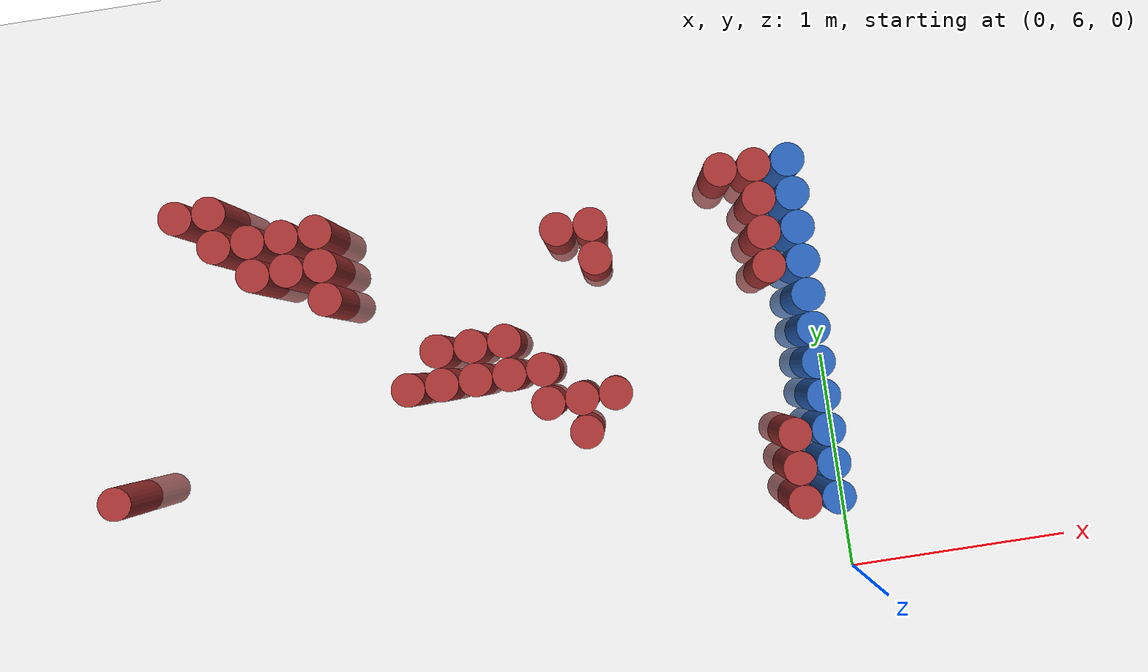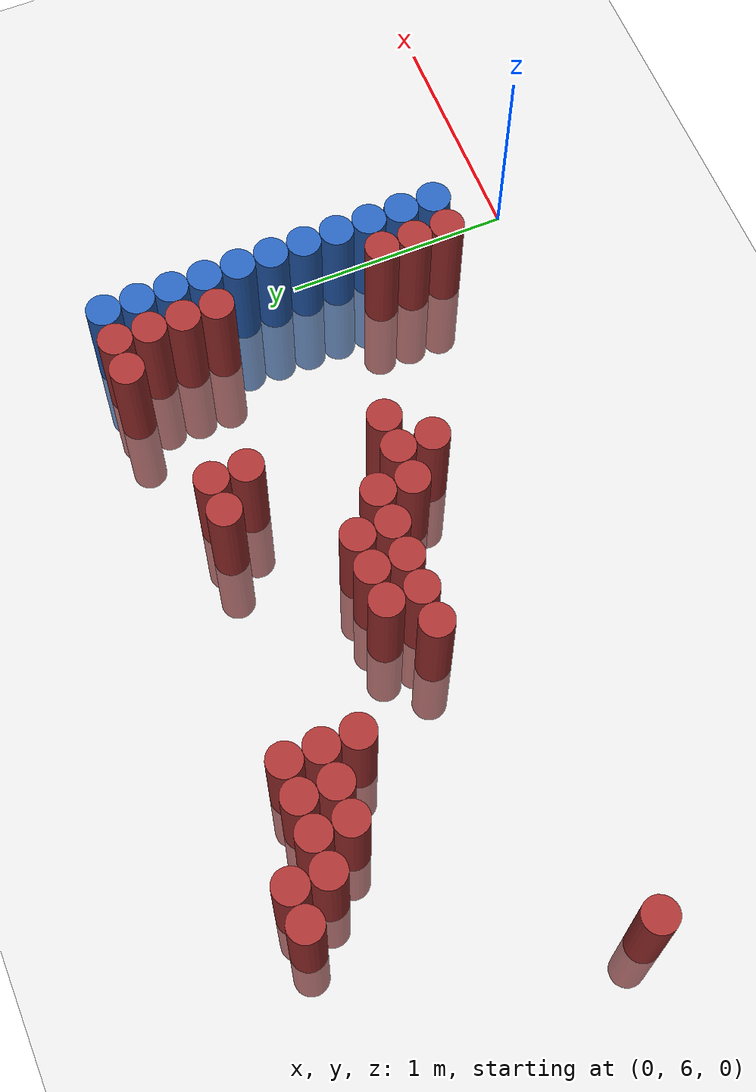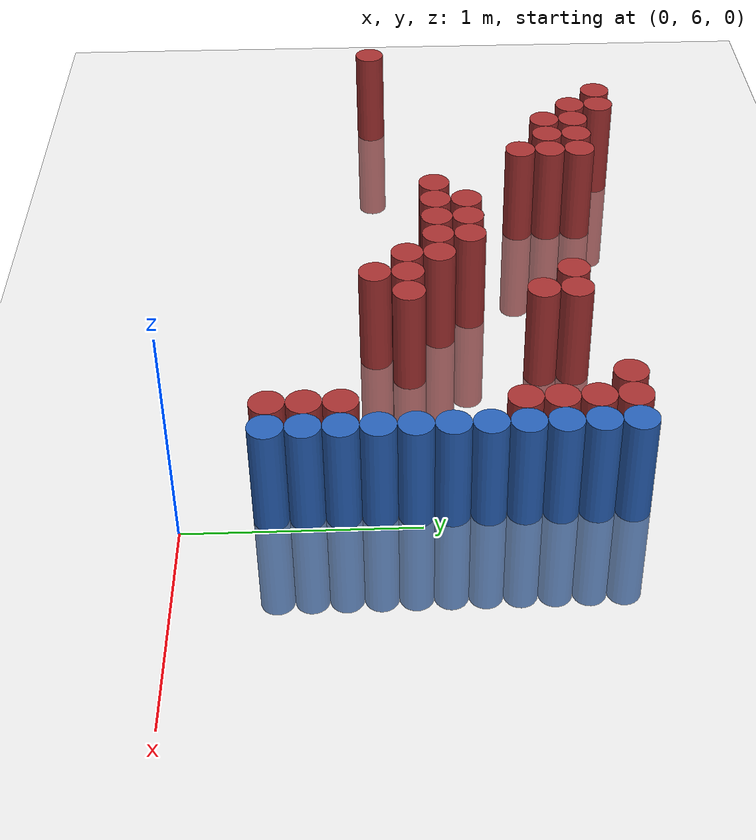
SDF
<sdf version="1.6">
 <world name="default">
  <model name="ground_plane">
   <static>1</static>
   <link name="link">
    <collision name="collision">
     <geometry><plane><normal>0 0 1</normal><size>100 100</size></plane></geometry>
     <surface><friction><ode><mu>100</mu><mu2>50</mu2></ode></friction></surface>
    </collision>
    <visual name="visual">
     <cast_shadows>0</cast_shadows>
     <geometry><plane><normal>0 0 1</normal><size>100 100</size></plane></geometry>
     <material>
      <script><uri>file://media/materials/scripts/gazebo.material</uri><name>Gazebo/Grey</name></script>
     </material>
    </visual>
   </link>
  </model>
  <model name="unit_cylinder_166">
   <static>1</static>
   <pose>-3.225000 6.825000 0.000000 0.000000 0.000000 0.000000</pose>
   <link name="link">
    <inertial>
     <mass>1</mass>
     <inertia><ixx>0.145833</ixx><ixy>0</ixy><ixz>0</ixz><iyy>0.145833</iyy><iyz>0</iyz><izz>0.125</izz></inertia>
    </inertial>
    <collision name="collision">
     <geometry><cylinder><radius>0.075000</radius><length>1</length></cylinder></geometry>
    </collision>
    <visual name="visual">
     <geometry><cylinder><radius>0.075000</radius><length>1</length></cylinder></geometry>
     <material>
      <ambient>0.648000 0.192000 0.192000 1</ambient>
      <diffuse>0.648000 0.192000 0.192000 1</diffuse>
     </material>
     <material>
      <script><name>Gazebo/Grey</name><uri>file://media/materials/scripts/gazebo.material</uri></script>
     </material>
    </visual>
   </link>
  </model>
  <model name="unit_cylinder_167">
   <static>1</static>
   <pose>-2.775000 8.025000 0.000000 0.000000 0.000000 0.000000</pose>
   <link name="link">
    <inertial>
     <mass>1</mass>
     <inertia><ixx>0.145833</ixx><ixy>0</ixy><ixz>0</ixz><iyy>0.145833</iyy><iyz>0</iyz><izz>0.125</izz></inertia>
    </inertial>
    <collision name="collision">
     <geometry><cylinder><radius>0.075000</radius><length>1</length></cylinder></geometry>
    </collision>
    <visual name="visual">
     <geometry><cylinder><radius>0.075000</radius><length>1</length></cylinder></geometry>
     <material>
      <ambient>0.648000 0.192000 0.192000 1</ambient>
      <diffuse>0.648000 0.192000 0.192000 1</diffuse>
     </material>
     <material>
      <script><name>Gazebo/Grey</name><uri>file://media/materials/scripts/gazebo.material</uri></script>
     </material>
    </visual>
   </link>
  </model>
  <model name="unit_cylinder_168">
   <static>1</static>
   <pose>-2.625000 7.875000 0.000000 0.000000 0.000000 0.000000</pose>
   <link name="link">
    <inertial>
     <mass>1</mass>
     <inertia><ixx>0.145833</ixx><ixy>0</ixy><ixz>0</ixz><iyy>0.145833</iyy><iyz>0</iyz><izz>0.125</izz></inertia>
    </inertial>
    <collision name="collision">
     <geometry><cylinder><radius>0.075000</radius><length>1</length></cylinder></geometry>
    </collision>
    <visual name="visual">
     <geometry><cylinder><radius>0.075000</radius><length>1</length></cylinder></geometry>
     <material>
      <ambient>0.648000 0.192000 0.192000 1</ambient>
      <diffuse>0.648000 0.192000 0.192000 1</diffuse>
     </material>
     <material>
      <script><name>Gazebo/Grey</name><uri>file://media/materials/scripts/gazebo.material</uri></script>
     </material>
    </visual>
   </link>
  </model>
  <model name="unit_cylinder_169">
   <static>1</static>
   <pose>-2.625000 8.025000 0.000000 0.000000 0.000000 0.000000</pose>
   <link name="link">
    <inertial>
     <mass>1</mass>
     <inertia><ixx>0.145833</ixx><ixy>0</ixy><ixz>0</ixz><iyy>0.145833</iyy><iyz>0</iyz><izz>0.125</izz></inertia>
    </inertial>
    <collision name="collision">
     <geometry><cylinder><radius>0.075000</radius><length>1</length></cylinder></geometry>
    </collision>
    <visual name="visual">
     <geometry><cylinder><radius>0.075000</radius><length>1</length></cylinder></geometry>
     <material>
      <ambient>0.648000 0.192000 0.192000 1</ambient>
      <diffuse>0.648000 0.192000 0.192000 1</diffuse>
     </material>
     <material>
      <script><name>Gazebo/Grey</name><uri>file://media/materials/scripts/gazebo.material</uri></script>
     </material>
    </visual>
   </link>
  </model>
  <model name="unit_cylinder_171">
   <static>1</static>
   <pose>-2.475000 7.725000 0.000000 0.000000 0.000000 0.000000</pose>
   <link name="link">
    <inertial>
     <mass>1</mass>
     <inertia><ixx>0.145833</ixx><ixy>0</ixy><ixz>0</ixz><iyy>0.145833</iyy><iyz>0</iyz><izz>0.125</izz></inertia>
    </inertial>
    <collision name="collision">
     <geometry><cylinder><radius>0.075000</radius><length>1</length></cylinder></geometry>
    </collision>
    <visual name="visual">
     <geometry><cylinder><radius>0.075000</radius><length>1</length></cylinder></geometry>
     <material>
      <ambient>0.648000 0.192000 0.192000 1</ambient>
      <diffuse>0.648000 0.192000 0.192000 1</diffuse>
     </material>
     <material>
      <script><name>Gazebo/Grey</name><uri>file://media/materials/scripts/gazebo.material</uri></script>
     </material>
    </visual>
   </link>
  </model>
  <model name="unit_cylinder_172">
   <static>1</static>
   <pose>-2.475000 7.875000 0.000000 0.000000 0.000000 0.000000</pose>
   <link name="link">
    <inertial>
     <mass>1</mass>
     <inertia><ixx>0.145833</ixx><ixy>0</ixy><ixz>0</ixz><iyy>0.145833</iyy><iyz>0</iyz><izz>0.125</izz></inertia>
    </inertial>
    <collision name="collision">
     <geometry><cylinder><radius>0.075000</radius><length>1</length></cylinder></geometry>
    </collision>
    <visual name="visual">
     <geometry><cylinder><radius>0.075000</radius><length>1</length></cylinder></geometry>
     <material>
      <ambient>0.648000 0.192000 0.192000 1</ambient>
      <diffuse>0.648000 0.192000 0.192000 1</diffuse>
     </material>
     <material>
      <script><name>Gazebo/Grey</name><uri>file://media/materials/scripts/gazebo.material</uri></script>
     </material>
    </visual>
   </link>
  </model>
  <model name="unit_cylinder_176">
   <static>1</static>
   <pose>-2.325000 7.725000 0.000000 0.000000 0.000000 0.000000</pose>
   <link name="link">
    <inertial>
     <mass>1</mass>
     <inertia><ixx>0.145833</ixx><ixy>0</ixy><ixz>0</ixz><iyy>0.145833</iyy><iyz>0</iyz><izz>0.125</izz></inertia>
    </inertial>
    <collision name="collision">
     <geometry><cylinder><radius>0.075000</radius><length>1</length></cylinder></geometry>
    </collision>
    <visual name="visual">
     <geometry><cylinder><radius>0.075000</radius><length>1</length></cylinder></geometry>
     <material>
      <ambient>0.648000 0.192000 0.192000 1</ambient>
      <diffuse>0.648000 0.192000 0.192000 1</diffuse>
     </material>
     <material>
      <script><name>Gazebo/Grey</name><uri>file://media/materials/scripts/gazebo.material</uri></script>
     </material>
    </visual>
   </link>
  </model>
  <model name="unit_cylinder_177">
   <static>1</static>
   <pose>-2.325000 7.875000 0.000000 0.000000 0.000000 0.000000</pose>
   <link name="link">
    <inertial>
     <mass>1</mass>
     <inertia><ixx>0.145833</ixx><ixy>0</ixy><ixz>0</ixz><iyy>0.145833</iyy><iyz>0</iyz><izz>0.125</izz></inertia>
    </inertial>
    <collision name="collision">
     <geometry><cylinder><radius>0.075000</radius><length>1</length></cylinder></geometry>
    </collision>
    <visual name="visual">
     <geometry><cylinder><radius>0.075000</radius><length>1</length></cylinder></geometry>
     <material>
      <ambient>0.648000 0.192000 0.192000 1</ambient>
      <diffuse>0.648000 0.192000 0.192000 1</diffuse>
     </material>
     <material>
      <script><name>Gazebo/Grey</name><uri>file://media/materials/scripts/gazebo.material</uri></script>
     </material>
    </visual>
   </link>
  </model>
  <model name="unit_cylinder_181">
   <static>1</static>
   <pose>-2.175000 7.575000 0.000000 0.000000 0.000000 0.000000</pose>
   <link name="link">
    <inertial>
     <mass>1</mass>
     <inertia><ixx>0.145833</ixx><ixy>0</ixy><ixz>0</ixz><iyy>0.145833</iyy><iyz>0</iyz><izz>0.125</izz></inertia>
    </inertial>
    <collision name="collision">
     <geometry><cylinder><radius>0.075000</radius><length>1</length></cylinder></geometry>
    </collision>
    <visual name="visual">
     <geometry><cylinder><radius>0.075000</radius><length>1</length></cylinder></geometry>
     <material>
      <ambient>0.648000 0.192000 0.192000 1</ambient>
      <diffuse>0.648000 0.192000 0.192000 1</diffuse>
     </material>
     <material>
      <script><name>Gazebo/Grey</name><uri>file://media/materials/scripts/gazebo.material</uri></script>
     </material>
    </visual>
   </link>
  </model>
  <model name="unit_cylinder_182">
   <static>1</static>
   <pose>-2.175000 7.725000 0.000000 0.000000 0.000000 0.000000</pose>
   <link name="link">
    <inertial>
     <mass>1</mass>
     <inertia><ixx>0.145833</ixx><ixy>0</ixy><ixz>0</ixz><iyy>0.145833</iyy><iyz>0</iyz><izz>0.125</izz></inertia>
    </inertial>
    <collision name="collision">
     <geometry><cylinder><radius>0.075000</radius><length>1</length></cylinder></geometry>
    </collision>
    <visual name="visual">
     <geometry><cylinder><radius>0.075000</radius><length>1</length></cylinder></geometry>
     <material>
      <ambient>0.648000 0.192000 0.192000 1</ambient>
      <diffuse>0.648000 0.192000 0.192000 1</diffuse>
     </material>
     <material>
      <script><name>Gazebo/Grey</name><uri>file://media/materials/scripts/gazebo.material</uri></script>
     </material>
    </visual>
   </link>
  </model>
  <model name="unit_cylinder_183">
   <static>1</static>
   <pose>-2.175000 7.875000 0.000000 0.000000 0.000000 0.000000</pose>
   <link name="link">
    <inertial>
     <mass>1</mass>
     <inertia><ixx>0.145833</ixx><ixy>0</ixy><ixz>0</ixz><iyy>0.145833</iyy><iyz>0</iyz><izz>0.125</izz></inertia>
    </inertial>
    <collision name="collision">
     <geometry><cylinder><radius>0.075000</radius><length>1</length></cylinder></geometry>
    </collision>
    <visual name="visual">
     <geometry><cylinder><radius>0.075000</radius><length>1</length></cylinder></geometry>
     <material>
      <ambient>0.648000 0.192000 0.192000 1</ambient>
      <diffuse>0.648000 0.192000 0.192000 1</diffuse>
     </material>
     <material>
      <script><name>Gazebo/Grey</name><uri>file://media/materials/scripts/gazebo.material</uri></script>
     </material>
    </visual>
   </link>
  </model>
  <model name="unit_cylinder_189">
   <static>1</static>
   <pose>-1.875000 7.125000 0.000000 0.000000 0.000000 0.000000</pose>
   <link name="link">
    <inertial>
     <mass>1</mass>
     <inertia><ixx>0.145833</ixx><ixy>0</ixy><ixz>0</ixz><iyy>0.145833</iyy><iyz>0</iyz><izz>0.125</izz></inertia>
    </inertial>
    <collision name="collision">
     <geometry><cylinder><radius>0.075000</radius><length>1</length></cylinder></geometry>
    </collision>
    <visual name="visual">
     <geometry><cylinder><radius>0.075000</radius><length>1</length></cylinder></geometry>
     <material>
      <ambient>0.648000 0.192000 0.192000 1</ambient>
      <diffuse>0.648000 0.192000 0.192000 1</diffuse>
     </material>
     <material>
      <script><name>Gazebo/Grey</name><uri>file://media/materials/scripts/gazebo.material</uri></script>
     </material>
    </visual>
   </link>
  </model>
  <model name="unit_cylinder_190">
   <static>1</static>
   <pose>-1.725000 7.125000 0.000000 0.000000 0.000000 0.000000</pose>
   <link name="link">
    <inertial>
     <mass>1</mass>
     <inertia><ixx>0.145833</ixx><ixy>0</ixy><ixz>0</ixz><iyy>0.145833</iyy><iyz>0</iyz><izz>0.125</izz></inertia>
    </inertial>
    <collision name="collision">
     <geometry><cylinder><radius>0.075000</radius><length>1</length></cylinder></geometry>
    </collision>
    <visual name="visual">
     <geometry><cylinder><radius>0.075000</radius><length>1</length></cylinder></geometry>
     <material>
      <ambient>0.648000 0.192000 0.192000 1</ambient>
      <diffuse>0.648000 0.192000 0.192000 1</diffuse>
     </material>
     <material>
      <script><name>Gazebo/Grey</name><uri>file://media/materials/scripts/gazebo.material</uri></script>
     </material>
    </visual>
   </link>
  </model>
  <model name="unit_cylinder_191">
   <static>1</static>
   <pose>-1.725000 7.275000 0.000000 0.000000 0.000000 0.000000</pose>
   <link name="link">
    <inertial>
     <mass>1</mass>
     <inertia><ixx>0.145833</ixx><ixy>0</ixy><ixz>0</ixz><iyy>0.145833</iyy><iyz>0</iyz><izz>0.125</izz></inertia>
    </inertial>
    <collision name="collision">
     <geometry><cylinder><radius>0.075000</radius><length>1</length></cylinder></geometry>
    </collision>
    <visual name="visual">
     <geometry><cylinder><radius>0.075000</radius><length>1</length></cylinder></geometry>
     <material>
      <ambient>0.648000 0.192000 0.192000 1</ambient>
      <diffuse>0.648000 0.192000 0.192000 1</diffuse>
     </material>
     <material>
      <script><name>Gazebo/Grey</name><uri>file://media/materials/scripts/gazebo.material</uri></script>
     </material>
    </visual>
   </link>
  </model>
  <model name="unit_cylinder_192">
   <static>1</static>
   <pose>-1.575000 7.125000 0.000000 0.000000 0.000000 0.000000</pose>
   <link name="link">
    <inertial>
     <mass>1</mass>
     <inertia><ixx>0.145833</ixx><ixy>0</ixy><ixz>0</ixz><iyy>0.145833</iyy><iyz>0</iyz><izz>0.125</izz></inertia>
    </inertial>
    <collision name="collision">
     <geometry><cylinder><radius>0.075000</radius><length>1</length></cylinder></geometry>
    </collision>
    <visual name="visual">
     <geometry><cylinder><radius>0.075000</radius><length>1</length></cylinder></geometry>
     <material>
      <ambient>0.648000 0.192000 0.192000 1</ambient>
      <diffuse>0.648000 0.192000 0.192000 1</diffuse>
     </material>
     <material>
      <script><name>Gazebo/Grey</name><uri>file://media/materials/scripts/gazebo.material</uri></script>
     </material>
    </visual>
   </link>
  </model>
  <model name="unit_cylinder_193">
   <static>1</static>
   <pose>-1.575000 7.275000 0.000000 0.000000 0.000000 0.000000</pose>
   <link name="link">
    <inertial>
     <mass>1</mass>
     <inertia><ixx>0.145833</ixx><ixy>0</ixy><ixz>0</ixz><iyy>0.145833</iyy><iyz>0</iyz><izz>0.125</izz></inertia>
    </inertial>
    <collision name="collision">
     <geometry><cylinder><radius>0.075000</radius><length>1</length></cylinder></geometry>
    </collision>
    <visual name="visual">
     <geometry><cylinder><radius>0.075000</radius><length>1</length></cylinder></geometry>
     <material>
      <ambient>0.648000 0.192000 0.192000 1</ambient>
      <diffuse>0.648000 0.192000 0.192000 1</diffuse>
     </material>
     <material>
      <script><name>Gazebo/Grey</name><uri>file://media/materials/scripts/gazebo.material</uri></script>
     </material>
    </visual>
   </link>
  </model>
  <model name="unit_cylinder_194">
   <static>1</static>
   <pose>-1.425000 7.125000 0.000000 0.000000 0.000000 0.000000</pose>
   <link name="link">
    <inertial>
     <mass>1</mass>
     <inertia><ixx>0.145833</ixx><ixy>0</ixy><ixz>0</ixz><iyy>0.145833</iyy><iyz>0</iyz><izz>0.125</izz></inertia>
    </inertial>
    <collision name="collision">
     <geometry><cylinder><radius>0.075000</radius><length>1</length></cylinder></geometry>
    </collision>
    <visual name="visual">
     <geometry><cylinder><radius>0.075000</radius><length>1</length></cylinder></geometry>
     <material>
      <ambient>0.648000 0.192000 0.192000 1</ambient>
      <diffuse>0.648000 0.192000 0.192000 1</diffuse>
     </material>
     <material>
      <script><name>Gazebo/Grey</name><uri>file://media/materials/scripts/gazebo.material</uri></script>
     </material>
    </visual>
   </link>
  </model>
  <model name="unit_cylinder_195">
   <static>1</static>
   <pose>-1.425000 7.275000 0.000000 0.000000 0.000000 0.000000</pose>
   <link name="link">
    <inertial>
     <mass>1</mass>
     <inertia><ixx>0.145833</ixx><ixy>0</ixy><ixz>0</ixz><iyy>0.145833</iyy><iyz>0</iyz><izz>0.125</izz></inertia>
    </inertial>
    <collision name="collision">
     <geometry><cylinder><radius>0.075000</radius><length>1</length></cylinder></geometry>
    </collision>
    <visual name="visual">
     <geometry><cylinder><radius>0.075000</radius><length>1</length></cylinder></geometry>
     <material>
      <ambient>0.648000 0.192000 0.192000 1</ambient>
      <diffuse>0.648000 0.192000 0.192000 1</diffuse>
     </material>
     <material>
      <script><name>Gazebo/Grey</name><uri>file://media/materials/scripts/gazebo.material</uri></script>
     </material>
    </visual>
   </link>
  </model>
  <model name="unit_cylinder_196">
   <static>1</static>
   <pose>-1.275000 6.975000 0.000000 0.000000 0.000000 0.000000</pose>
   <link name="link">
    <inertial>
     <mass>1</mass>
     <inertia><ixx>0.145833</ixx><ixy>0</ixy><ixz>0</ixz><iyy>0.145833</iyy><iyz>0</iyz><izz>0.125</izz></inertia>
    </inertial>
    <collision name="collision">
     <geometry><cylinder><radius>0.075000</radius><length>1</length></cylinder></geometry>
    </collision>
    <visual name="visual">
     <geometry><cylinder><radius>0.075000</radius><length>1</length></cylinder></geometry>
     <material>
      <ambient>0.648000 0.192000 0.192000 1</ambient>
      <diffuse>0.648000 0.192000 0.192000 1</diffuse>
     </material>
     <material>
      <script><name>Gazebo/Grey</name><uri>file://media/materials/scripts/gazebo.material</uri></script>
     </material>
    </visual>
   </link>
  </model>
  <model name="unit_cylinder_197">
   <static>1</static>
   <pose>-1.275000 7.125000 0.000000 0.000000 0.000000 0.000000</pose>
   <link name="link">
    <inertial>
     <mass>1</mass>
     <inertia><ixx>0.145833</ixx><ixy>0</ixy><ixz>0</ixz><iyy>0.145833</iyy><iyz>0</iyz><izz>0.125</izz></inertia>
    </inertial>
    <collision name="collision">
     <geometry><cylinder><radius>0.075000</radius><length>1</length></cylinder></geometry>
    </collision>
    <visual name="visual">
     <geometry><cylinder><radius>0.075000</radius><length>1</length></cylinder></geometry>
     <material>
      <ambient>0.648000 0.192000 0.192000 1</ambient>
      <diffuse>0.648000 0.192000 0.192000 1</diffuse>
     </material>
     <material>
      <script><name>Gazebo/Grey</name><uri>file://media/materials/scripts/gazebo.material</uri></script>
     </material>
    </visual>
   </link>
  </model>
  <model name="unit_cylinder_200">
   <static>1</static>
   <pose>-1.125000 6.825000 0.000000 0.000000 0.000000 0.000000</pose>
   <link name="link">
    <inertial>
     <mass>1</mass>
     <inertia><ixx>0.145833</ixx><ixy>0</ixy><ixz>0</ixz><iyy>0.145833</iyy><iyz>0</iyz><izz>0.125</izz></inertia>
    </inertial>
    <collision name="collision">
     <geometry><cylinder><radius>0.075000</radius><length>1</length></cylinder></geometry>
    </collision>
    <visual name="visual">
     <geometry><cylinder><radius>0.075000</radius><length>1</length></cylinder></geometry>
     <material>
      <ambient>0.648000 0.192000 0.192000 1</ambient>
      <diffuse>0.648000 0.192000 0.192000 1</diffuse>
     </material>
     <material>
      <script><name>Gazebo/Grey</name><uri>file://media/materials/scripts/gazebo.material</uri></script>
     </material>
    </visual>
   </link>
  </model>
  <model name="unit_cylinder_201">
   <static>1</static>
   <pose>-1.125000 6.975000 0.000000 0.000000 0.000000 0.000000</pose>
   <link name="link">
    <inertial>
     <mass>1</mass>
     <inertia><ixx>0.145833</ixx><ixy>0</ixy><ixz>0</ixz><iyy>0.145833</iyy><iyz>0</iyz><izz>0.125</izz></inertia>
    </inertial>
    <collision name="collision">
     <geometry><cylinder><radius>0.075000</radius><length>1</length></cylinder></geometry>
    </collision>
    <visual name="visual">
     <geometry><cylinder><radius>0.075000</radius><length>1</length></cylinder></geometry>
     <material>
      <ambient>0.648000 0.192000 0.192000 1</ambient>
      <diffuse>0.648000 0.192000 0.192000 1</diffuse>
     </material>
     <material>
      <script><name>Gazebo/Grey</name><uri>file://media/materials/scripts/gazebo.material</uri></script>
     </material>
    </visual>
   </link>
  </model>
  <model name="unit_cylinder_202">
   <static>1</static>
   <pose>-1.125000 7.725000 0.000000 0.000000 0.000000 0.000000</pose>
   <link name="link">
    <inertial>
     <mass>1</mass>
     <inertia><ixx>0.145833</ixx><ixy>0</ixy><ixz>0</ixz><iyy>0.145833</iyy><iyz>0</iyz><izz>0.125</izz></inertia>
    </inertial>
    <collision name="collision">
     <geometry><cylinder><radius>0.075000</radius><length>1</length></cylinder></geometry>
    </collision>
    <visual name="visual">
     <geometry><cylinder><radius>0.075000</radius><length>1</length></cylinder></geometry>
     <material>
      <ambient>0.648000 0.192000 0.192000 1</ambient>
      <diffuse>0.648000 0.192000 0.192000 1</diffuse>
     </material>
     <material>
      <script><name>Gazebo/Grey</name><uri>file://media/materials/scripts/gazebo.material</uri></script>
     </material>
    </visual>
   </link>
  </model>
  <model name="unit_cylinder_205">
   <static>1</static>
   <pose>-0.975000 6.975000 0.000000 0.000000 0.000000 0.000000</pose>
   <link name="link">
    <inertial>
     <mass>1</mass>
     <inertia><ixx>0.145833</ixx><ixy>0</ixy><ixz>0</ixz><iyy>0.145833</iyy><iyz>0</iyz><izz>0.125</izz></inertia>
    </inertial>
    <collision name="collision">
     <geometry><cylinder><radius>0.075000</radius><length>1</length></cylinder></geometry>
    </collision>
    <visual name="visual">
     <geometry><cylinder><radius>0.075000</radius><length>1</length></cylinder></geometry>
     <material>
      <ambient>0.648000 0.192000 0.192000 1</ambient>
      <diffuse>0.648000 0.192000 0.192000 1</diffuse>
     </material>
     <material>
      <script><name>Gazebo/Grey</name><uri>file://media/materials/scripts/gazebo.material</uri></script>
     </material>
    </visual>
   </link>
  </model>
  <model name="unit_cylinder_206">
   <static>1</static>
   <pose>-0.975000 7.575000 0.000000 0.000000 0.000000 0.000000</pose>
   <link name="link">
    <inertial>
     <mass>1</mass>
     <inertia><ixx>0.145833</ixx><ixy>0</ixy><ixz>0</ixz><iyy>0.145833</iyy><iyz>0</iyz><izz>0.125</izz></inertia>
    </inertial>
    <collision name="collision">
     <geometry><cylinder><radius>0.075000</radius><length>1</length></cylinder></geometry>
    </collision>
    <visual name="visual">
     <geometry><cylinder><radius>0.075000</radius><length>1</length></cylinder></geometry>
     <material>
      <ambient>0.648000 0.192000 0.192000 1</ambient>
      <diffuse>0.648000 0.192000 0.192000 1</diffuse>
     </material>
     <material>
      <script><name>Gazebo/Grey</name><uri>file://media/materials/scripts/gazebo.material</uri></script>
     </material>
    </visual>
   </link>
  </model>
  <model name="unit_cylinder_207">
   <static>1</static>
   <pose>-0.975000 7.725000 0.000000 0.000000 0.000000 0.000000</pose>
   <link name="link">
    <inertial>
     <mass>1</mass>
     <inertia><ixx>0.145833</ixx><ixy>0</ixy><ixz>0</ixz><iyy>0.145833</iyy><iyz>0</iyz><izz>0.125</izz></inertia>
    </inertial>
    <collision name="collision">
     <geometry><cylinder><radius>0.075000</radius><length>1</length></cylinder></geometry>
    </collision>
    <visual name="visual">
     <geometry><cylinder><radius>0.075000</radius><length>1</length></cylinder></geometry>
     <material>
      <ambient>0.648000 0.192000 0.192000 1</ambient>
      <diffuse>0.648000 0.192000 0.192000 1</diffuse>
     </material>
     <material>
      <script><name>Gazebo/Grey</name><uri>file://media/materials/scripts/gazebo.material</uri></script>
     </material>
    </visual>
   </link>
  </model>
  <model name="unit_cylinder_223">
   <static>1</static>
   <pose>-0.375000 7.875000 0.000000 0.000000 0.000000 0.000000</pose>
   <link name="link">
    <inertial>
     <mass>1</mass>
     <inertia><ixx>0.145833</ixx><ixy>0</ixy><ixz>0</ixz><iyy>0.145833</iyy><iyz>0</iyz><izz>0.125</izz></inertia>
    </inertial>
    <collision name="collision">
     <geometry><cylinder><radius>0.075000</radius><length>1</length></cylinder></geometry>
    </collision>
    <visual name="visual">
     <geometry><cylinder><radius>0.075000</radius><length>1</length></cylinder></geometry>
     <material>
      <ambient>0.648000 0.192000 0.192000 1</ambient>
      <diffuse>0.648000 0.192000 0.192000 1</diffuse>
     </material>
     <material>
      <script><name>Gazebo/Grey</name><uri>file://media/materials/scripts/gazebo.material</uri></script>
     </material>
    </visual>
   </link>
  </model>
  <model name="unit_cylinder_231">
   <static>1</static>
   <pose>-0.225000 6.375000 0.000000 0.000000 0.000000 0.000000</pose>
   <link name="link">
    <inertial>
     <mass>1</mass>
     <inertia><ixx>0.145833</ixx><ixy>0</ixy><ixz>0</ixz><iyy>0.145833</iyy><iyz>0</iyz><izz>0.125</izz></inertia>
    </inertial>
    <collision name="collision">
     <geometry><cylinder><radius>0.075000</radius><length>1</length></cylinder></geometry>
    </collision>
    <visual name="visual">
     <geometry><cylinder><radius>0.075000</radius><length>1</length></cylinder></geometry>
     <material>
      <ambient>0.648000 0.192000 0.192000 1</ambient>
      <diffuse>0.648000 0.192000 0.192000 1</diffuse>
     </material>
     <material>
      <script><name>Gazebo/Grey</name><uri>file://media/materials/scripts/gazebo.material</uri></script>
     </material>
    </visual>
   </link>
  </model>
  <model name="unit_cylinder_232">
   <static>1</static>
   <pose>-0.225000 6.525000 0.000000 0.000000 0.000000 0.000000</pose>
   <link name="link">
    <inertial>
     <mass>1</mass>
     <inertia><ixx>0.145833</ixx><ixy>0</ixy><ixz>0</ixz><iyy>0.145833</iyy><iyz>0</iyz><izz>0.125</izz></inertia>
    </inertial>
    <collision name="collision">
     <geometry><cylinder><radius>0.075000</radius><length>1</length></cylinder></geometry>
    </collision>
    <visual name="visual">
     <geometry><cylinder><radius>0.075000</radius><length>1</length></cylinder></geometry>
     <material>
      <ambient>0.648000 0.192000 0.192000 1</ambient>
      <diffuse>0.648000 0.192000 0.192000 1</diffuse>
     </material>
     <material>
      <script><name>Gazebo/Grey</name><uri>file://media/materials/scripts/gazebo.material</uri></script>
     </material>
    </visual>
   </link>
  </model>
  <model name="unit_cylinder_233">
   <static>1</static>
   <pose>-0.225000 6.675000 0.000000 0.000000 0.000000 0.000000</pose>
   <link name="link">
    <inertial>
     <mass>1</mass>
     <inertia><ixx>0.145833</ixx><ixy>0</ixy><ixz>0</ixz><iyy>0.145833</iyy><iyz>0</iyz><izz>0.125</izz></inertia>
    </inertial>
    <collision name="collision">
     <geometry><cylinder><radius>0.075000</radius><length>1</length></cylinder></geometry>
    </collision>
    <visual name="visual">
     <geometry><cylinder><radius>0.075000</radius><length>1</length></cylinder></geometry>
     <material>
      <ambient>0.648000 0.192000 0.192000 1</ambient>
      <diffuse>0.648000 0.192000 0.192000 1</diffuse>
     </material>
     <material>
      <script><name>Gazebo/Grey</name><uri>file://media/materials/scripts/gazebo.material</uri></script>
     </material>
    </visual>
   </link>
  </model>
  <model name="unit_cylinder_234">
   <static>1</static>
   <pose>-0.225000 7.425000 0.000000 0.000000 0.000000 0.000000</pose>
   <link name="link">
    <inertial>
     <mass>1</mass>
     <inertia><ixx>0.145833</ixx><ixy>0</ixy><ixz>0</ixz><iyy>0.145833</iyy><iyz>0</iyz><izz>0.125</izz></inertia>
    </inertial>
    <collision name="collision">
     <geometry><cylinder><radius>0.075000</radius><length>1</length></cylinder></geometry>
    </collision>
    <visual name="visual">
     <geometry><cylinder><radius>0.075000</radius><length>1</length></cylinder></geometry>
     <material>
      <ambient>0.648000 0.192000 0.192000 1</ambient>
      <diffuse>0.648000 0.192000 0.192000 1</diffuse>
     </material>
     <material>
      <script><name>Gazebo/Grey</name><uri>file://media/materials/scripts/gazebo.material</uri></script>
     </material>
    </visual>
   </link>
  </model>
  <model name="unit_cylinder_235">
   <static>1</static>
   <pose>-0.225000 7.575000 0.000000 0.000000 0.000000 0.000000</pose>
   <link name="link">
    <inertial>
     <mass>1</mass>
     <inertia><ixx>0.145833</ixx><ixy>0</ixy><ixz>0</ixz><iyy>0.145833</iyy><iyz>0</iyz><izz>0.125</izz></inertia>
    </inertial>
    <collision name="collision">
     <geometry><cylinder><radius>0.075000</radius><length>1</length></cylinder></geometry>
    </collision>
    <visual name="visual">
     <geometry><cylinder><radius>0.075000</radius><length>1</length></cylinder></geometry>
     <material>
      <ambient>0.648000 0.192000 0.192000 1</ambient>
      <diffuse>0.648000 0.192000 0.192000 1</diffuse>
     </material>
     <material>
      <script><name>Gazebo/Grey</name><uri>file://media/materials/scripts/gazebo.material</uri></script>
     </material>
    </visual>
   </link>
  </model>
  <model name="unit_cylinder_236">
   <static>1</static>
   <pose>-0.225000 7.725000 0.000000 0.000000 0.000000 0.000000</pose>
   <link name="link">
    <inertial>
     <mass>1</mass>
     <inertia><ixx>0.145833</ixx><ixy>0</ixy><ixz>0</ixz><iyy>0.145833</iyy><iyz>0</iyz><izz>0.125</izz></inertia>
    </inertial>
    <collision name="collision">
     <geometry><cylinder><radius>0.075000</radius><length>1</length></cylinder></geometry>
    </collision>
    <visual name="visual">
     <geometry><cylinder><radius>0.075000</radius><length>1</length></cylinder></geometry>
     <material>
      <ambient>0.648000 0.192000 0.192000 1</ambient>
      <diffuse>0.648000 0.192000 0.192000 1</diffuse>
     </material>
     <material>
      <script><name>Gazebo/Grey</name><uri>file://media/materials/scripts/gazebo.material</uri></script>
     </material>
    </visual>
   </link>
  </model>
  <model name="unit_cylinder_237">
   <static>1</static>
   <pose>-0.225000 7.875000 0.000000 0.000000 0.000000 0.000000</pose>
   <link name="link">
    <inertial>
     <mass>1</mass>
     <inertia><ixx>0.145833</ixx><ixy>0</ixy><ixz>0</ixz><iyy>0.145833</iyy><iyz>0</iyz><izz>0.125</izz></inertia>
    </inertial>
    <collision name="collision">
     <geometry><cylinder><radius>0.075000</radius><length>1</length></cylinder></geometry>
    </collision>
    <visual name="visual">
     <geometry><cylinder><radius>0.075000</radius><length>1</length></cylinder></geometry>
     <material>
      <ambient>0.648000 0.192000 0.192000 1</ambient>
      <diffuse>0.648000 0.192000 0.192000 1</diffuse>
     </material>
     <material>
      <script><name>Gazebo/Grey</name><uri>file://media/materials/scripts/gazebo.material</uri></script>
     </material>
    </visual>
   </link>
  </model>
  <model name="unit_cylinder_252">
   <static>1</static>
   <pose>-0.075000 6.375000 0.000000 0.000000 0.000000 0.000000</pose>
   <link name="link">
    <inertial>
     <mass>1</mass>
     <inertia><ixx>0.145833</ixx><ixy>0</ixy><ixz>0</ixz><iyy>0.145833</iyy><iyz>0</iyz><izz>0.125</izz></inertia>
    </inertial>
    <collision name="collision">
     <geometry><cylinder><radius>0.075000</radius><length>1</length></cylinder></geometry>
    </collision>
    <visual name="visual">
     <geometry><cylinder><radius>0.075000</radius><length>1</length></cylinder></geometry>
     <material>
      <ambient>0.152000 0.379000 0.720000 1</ambient>
      <diffuse>0.152000 0.379000 0.720000 1</diffuse>
     </material>
     <material>
      <script><name>Gazebo/Grey</name><uri>file://media/materials/scripts/gazebo.material</uri></script>
     </material>
    </visual>
   </link>
  </model>
  <model name="unit_cylinder_253">
   <static>1</static>
   <pose>-0.075000 6.525000 0.000000 0.000000 0.000000 0.000000</pose>
   <link name="link">
    <inertial>
     <mass>1</mass>
     <inertia><ixx>0.145833</ixx><ixy>0</ixy><ixz>0</ixz><iyy>0.145833</iyy><iyz>0</iyz><izz>0.125</izz></inertia>
    </inertial>
    <collision name="collision">
     <geometry><cylinder><radius>0.075000</radius><length>1</length></cylinder></geometry>
    </collision>
    <visual name="visual">
     <geometry><cylinder><radius>0.075000</radius><length>1</length></cylinder></geometry>
     <material>
      <ambient>0.152000 0.379000 0.720000 1</ambient>
      <diffuse>0.152000 0.379000 0.720000 1</diffuse>
     </material>
     <material>
      <script><name>Gazebo/Grey</name><uri>file://media/materials/scripts/gazebo.material</uri></script>
     </material>
    </visual>
   </link>
  </model>
  <model name="unit_cylinder_254">
   <static>1</static>
   <pose>-0.075000 6.675000 0.000000 0.000000 0.000000 0.000000</pose>
   <link name="link">
    <inertial>
     <mass>1</mass>
     <inertia><ixx>0.145833</ixx><ixy>0</ixy><ixz>0</ixz><iyy>0.145833</iyy><iyz>0</iyz><izz>0.125</izz></inertia>
    </inertial>
    <collision name="collision">
     <geometry><cylinder><radius>0.075000</radius><length>1</length></cylinder></geometry>
    </collision>
    <visual name="visual">
     <geometry><cylinder><radius>0.075000</radius><length>1</length></cylinder></geometry>
     <material>
      <ambient>0.152000 0.379000 0.720000 1</ambient>
      <diffuse>0.152000 0.379000 0.720000 1</diffuse>
     </material>
     <material>
      <script><name>Gazebo/Grey</name><uri>file://media/materials/scripts/gazebo.material</uri></script>
     </material>
    </visual>
   </link>
  </model>
  <model name="unit_cylinder_255">
   <static>1</static>
   <pose>-0.075000 6.825000 0.000000 0.000000 0.000000 0.000000</pose>
   <link name="link">
    <inertial>
     <mass>1</mass>
     <inertia><ixx>0.145833</ixx><ixy>0</ixy><ixz>0</ixz><iyy>0.145833</iyy><iyz>0</iyz><izz>0.125</izz></inertia>
    </inertial>
    <collision name="collision">
     <geometry><cylinder><radius>0.075000</radius><length>1</length></cylinder></geometry>
    </collision>
    <visual name="visual">
     <geometry><cylinder><radius>0.075000</radius><length>1</length></cylinder></geometry>
     <material>
      <ambient>0.152000 0.379000 0.720000 1</ambient>
      <diffuse>0.152000 0.379000 0.720000 1</diffuse>
     </material>
     <material>
      <script><name>Gazebo/Grey</name><uri>file://media/materials/scripts/gazebo.material</uri></script>
     </material>
    </visual>
   </link>
  </model>
  <model name="unit_cylinder_256">
   <static>1</static>
   <pose>-0.075000 6.975000 0.000000 0.000000 0.000000 0.000000</pose>
   <link name="link">
    <inertial>
     <mass>1</mass>
     <inertia><ixx>0.145833</ixx><ixy>0</ixy><ixz>0</ixz><iyy>0.145833</iyy><iyz>0</iyz><izz>0.125</izz></inertia>
    </inertial>
    <collision name="collision">
     <geometry><cylinder><radius>0.075000</radius><length>1</length></cylinder></geometry>
    </collision>
    <visual name="visual">
     <geometry><cylinder><radius>0.075000</radius><length>1</length></cylinder></geometry>
     <material>
      <ambient>0.152000 0.379000 0.720000 1</ambient>
      <diffuse>0.152000 0.379000 0.720000 1</diffuse>
     </material>
     <material>
      <script><name>Gazebo/Grey</name><uri>file://media/materials/scripts/gazebo.material</uri></script>
     </material>
    </visual>
   </link>
  </model>
  <model name="unit_cylinder_257">
   <static>1</static>
   <pose>-0.075000 7.125000 0.000000 0.000000 0.000000 0.000000</pose>
   <link name="link">
    <inertial>
     <mass>1</mass>
     <inertia><ixx>0.145833</ixx><ixy>0</ixy><ixz>0</ixz><iyy>0.145833</iyy><iyz>0</iyz><izz>0.125</izz></inertia>
    </inertial>
    <collision name="collision">
     <geometry><cylinder><radius>0.075000</radius><length>1</length></cylinder></geometry>
    </collision>
    <visual name="visual">
     <geometry><cylinder><radius>0.075000</radius><length>1</length></cylinder></geometry>
     <material>
      <ambient>0.152000 0.379000 0.720000 1</ambient>
      <diffuse>0.152000 0.379000 0.720000 1</diffuse>
     </material>
     <material>
      <script><name>Gazebo/Grey</name><uri>file://media/materials/scripts/gazebo.material</uri></script>
     </material>
    </visual>
   </link>
  </model>
  <model name="unit_cylinder_258">
   <static>1</static>
   <pose>-0.075000 7.275000 0.000000 0.000000 0.000000 0.000000</pose>
   <link name="link">
    <inertial>
     <mass>1</mass>
     <inertia><ixx>0.145833</ixx><ixy>0</ixy><ixz>0</ixz><iyy>0.145833</iyy><iyz>0</iyz><izz>0.125</izz></inertia>
    </inertial>
    <collision name="collision">
     <geometry><cylinder><radius>0.075000</radius><length>1</length></cylinder></geometry>
    </collision>
    <visual name="visual">
     <geometry><cylinder><radius>0.075000</radius><length>1</length></cylinder></geometry>
     <material>
      <ambient>0.152000 0.379000 0.720000 1</ambient>
      <diffuse>0.152000 0.379000 0.720000 1</diffuse>
     </material>
     <material>
      <script><name>Gazebo/Grey</name><uri>file://media/materials/scripts/gazebo.material</uri></script>
     </material>
    </visual>
   </link>
  </model>
  <model name="unit_cylinder_259">
   <static>1</static>
   <pose>-0.075000 7.425000 0.000000 0.000000 0.000000 0.000000</pose>
   <link name="link">
    <inertial>
     <mass>1</mass>
     <inertia><ixx>0.145833</ixx><ixy>0</ixy><ixz>0</ixz><iyy>0.145833</iyy><iyz>0</iyz><izz>0.125</izz></inertia>
    </inertial>
    <collision name="collision">
     <geometry><cylinder><radius>0.075000</radius><length>1</length></cylinder></geometry>
    </collision>
    <visual name="visual">
     <geometry><cylinder><radius>0.075000</radius><length>1</length></cylinder></geometry>
     <material>
      <ambient>0.152000 0.379000 0.720000 1</ambient>
      <diffuse>0.152000 0.379000 0.720000 1</diffuse>
     </material>
     <material>
      <script><name>Gazebo/Grey</name><uri>file://media/materials/scripts/gazebo.material</uri></script>
     </material>
    </visual>
   </link>
  </model>
  <model name="unit_cylinder_260">
   <static>1</static>
   <pose>-0.075000 7.575000 0.000000 0.000000 0.000000 0.000000</pose>
   <link name="link">
    <inertial>
     <mass>1</mass>
     <inertia><ixx>0.145833</ixx><ixy>0</ixy><ixz>0</ixz><iyy>0.145833</iyy><iyz>0</iyz><izz>0.125</izz></inertia>
    </inertial>
    <collision name="collision">
     <geometry><cylinder><radius>0.075000</radius><length>1</length></cylinder></geometry>
    </collision>
    <visual name="visual">
     <geometry><cylinder><radius>0.075000</radius><length>1</length></cylinder></geometry>
     <material>
      <ambient>0.152000 0.379000 0.720000 1</ambient>
      <diffuse>0.152000 0.379000 0.720000 1</diffuse>
     </material>
     <material>
      <script><name>Gazebo/Grey</name><uri>file://media/materials/scripts/gazebo.material</uri></script>
     </material>
    </visual>
   </link>
  </model>
  <model name="unit_cylinder_261">
   <static>1</static>
   <pose>-0.075000 7.725000 0.000000 0.000000 0.000000 0.000000</pose>
   <link name="link">
    <inertial>
     <mass>1</mass>
     <inertia><ixx>0.145833</ixx><ixy>0</ixy><ixz>0</ixz><iyy>0.145833</iyy><iyz>0</iyz><izz>0.125</izz></inertia>
    </inertial>
    <collision name="collision">
     <geometry><cylinder><radius>0.075000</radius><length>1</length></cylinder></geometry>
    </collision>
    <visual name="visual">
     <geometry><cylinder><radius>0.075000</radius><length>1</length></cylinder></geometry>
     <material>
      <ambient>0.152000 0.379000 0.720000 1</ambient>
      <diffuse>0.152000 0.379000 0.720000 1</diffuse>
     </material>
     <material>
      <script><name>Gazebo/Grey</name><uri>file://media/materials/scripts/gazebo.material</uri></script>
     </material>
    </visual>
   </link>
  </model>
  <model name="unit_cylinder_262">
   <static>1</static>
   <pose>-0.075000 7.875000 0.000000 0.000000 0.000000 0.000000</pose>
   <link name="link">
    <inertial>
     <mass>1</mass>
     <inertia><ixx>0.145833</ixx><ixy>0</ixy><ixz>0</ixz><iyy>0.145833</iyy><iyz>0</iyz><izz>0.125</izz></inertia>
    </inertial>
    <collision name="collision">
     <geometry><cylinder><radius>0.075000</radius><length>1</length></cylinder></geometry>
    </collision>
    <visual name="visual">
     <geometry><cylinder><radius>0.075000</radius><length>1</length></cylinder></geometry>
     <material>
      <ambient>0.152000 0.379000 0.720000 1</ambient>
      <diffuse>0.152000 0.379000 0.720000 1</diffuse>
     </material>
     <material>
      <script><name>Gazebo/Grey</name><uri>file://media/materials/scripts/gazebo.material</uri></script>
     </material>
    </visual>
   </link>
  </model>
 </world>
</sdf>
